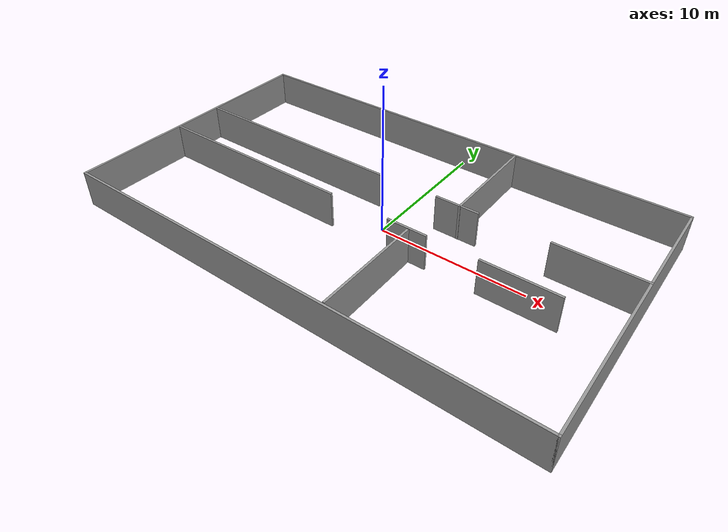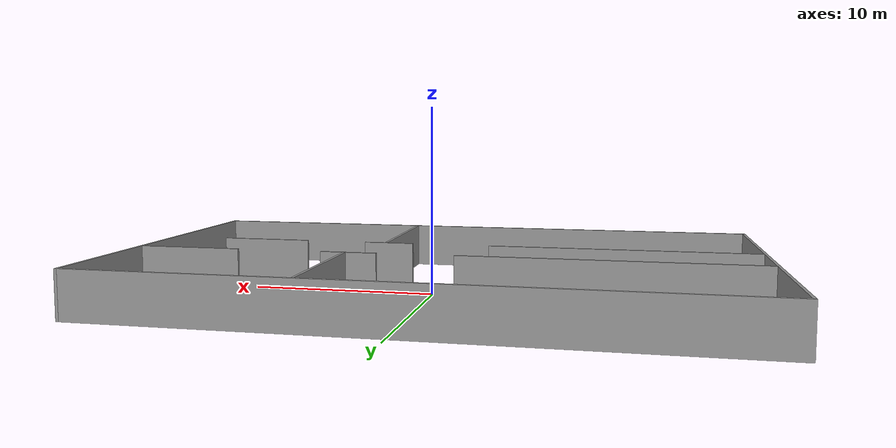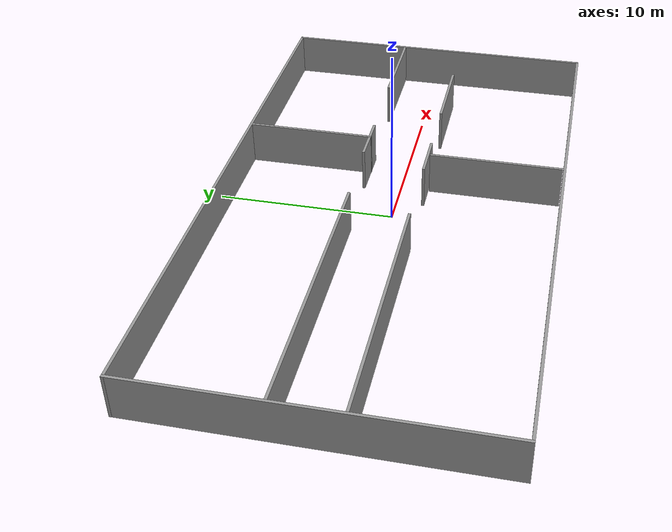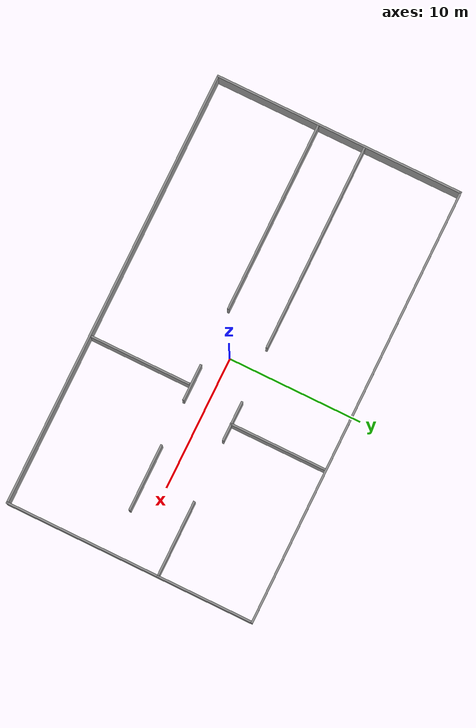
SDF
<?xml version='1.0'?>
<sdf version='1.6'>
  <model name='lima-mars'>
    <pose frame=''>-0.67212 0.070161 0 0 -0 0</pose>
    <link name='Wall_10'>
      <collision name='Wall_10_Collision'>
        <geometry>
          <box>
            <size>14.25 0.15 2.5</size>
          </box>
        </geometry>
        <pose frame=''>0 0 1.25 0 -0 0</pose>
      </collision>
      <visual name='Wall_10_Visual'>
        <pose frame=''>0 0 1.25 0 -0 0</pose>
        <geometry>
          <box>
            <size>14.25 0.15 2.5</size>
          </box>
        </geometry>
        <material>
          <script>
            <uri>file://media/materials/scripts/gazebo.material</uri>
            <name>Gazebo/Grey</name>
          </script>
          <ambient>1 1 1 1</ambient>
        </material>
      </visual>
      <pose frame=''>-9.26946 -1.57024 0 0 -0 0</pose>
    </link>
    <link name='Wall_12'>
      <collision name='Wall_12_Collision'>
        <geometry>
          <box>
            <size>2.75 0.15 2.5</size>
          </box>
        </geometry>
        <pose frame=''>0 0 1.25 0 -0 0</pose>
      </collision>
      <visual name='Wall_12_Visual'>
        <pose frame=''>0 0 1.25 0 -0 0</pose>
        <geometry>
          <box>
            <size>2.75 0.15 2.5</size>
          </box>
        </geometry>
        <material>
          <script>
            <uri>file://media/materials/scripts/gazebo.material</uri>
            <name>Gazebo/Grey</name>
          </script>
          <ambient>1 1 1 1</ambient>
        </material>
      </visual>
      <pose frame=''>3.48457 -1.57024 0 0 -0 0</pose>
    </link>
    <link name='Wall_14'>
      <collision name='Wall_14_Collision'>
        <geometry>
          <box>
            <size>7.5 0.15 2.5</size>
          </box>
        </geometry>
        <pose frame=''>0 0 1.25 0 -0 0</pose>
      </collision>
      <visual name='Wall_14_Visual'>
        <pose frame=''>0 0 1.25 0 -0 0</pose>
        <geometry>
          <box>
            <size>7.5 0.15 2.5</size>
          </box>
        </geometry>
        <material>
          <script>
            <uri>file://media/materials/scripts/gazebo.material</uri>
            <name>Gazebo/Grey</name>
          </script>
          <ambient>1 1 1 1</ambient>
        </material>
      </visual>
      <pose frame=''>3.65729 -5.43811 0 0 0 -1.5708</pose>
    </link>
    <link name='Wall_16'>
      <collision name='Wall_16_Collision'>
        <geometry>
          <box>
            <size>15.5 0.15 2.5</size>
          </box>
        </geometry>
        <pose frame=''>0 0 1.25 0 -0 0</pose>
      </collision>
      <visual name='Wall_16_Visual'>
        <pose frame=''>0 0 1.25 0 -0 0</pose>
        <geometry>
          <box>
            <size>15.5 0.15 2.5</size>
          </box>
        </geometry>
        <material>
          <script>
            <uri>file://media/materials/scripts/gazebo.material</uri>
            <name>Gazebo/Grey</name>
          </script>
          <ambient>1 1 1 1</ambient>
        </material>
      </visual>
      <pose frame=''>-8.64446 1.98282 0 0 -0 0</pose>
    </link>
    <link name='Wall_18'>
      <collision name='Wall_18_Collision'>
        <geometry>
          <box>
            <size>3 0.15 2.5</size>
          </box>
        </geometry>
        <pose frame=''>0 0 1.25 0 -0 0</pose>
      </collision>
      <visual name='Wall_18_Visual'>
        <pose frame=''>0 0 1.25 0 -0 0</pose>
        <geometry>
          <box>
            <size>3 0.15 2.5</size>
          </box>
        </geometry>
        <material>
          <script>
            <uri>file://media/materials/scripts/gazebo.material</uri>
            <name>Gazebo/Grey</name>
          </script>
          <ambient>1 1 1 1</ambient>
        </material>
      </visual>
      <pose frame=''>4.66493 2.08835 0 0 -0 0</pose>
    </link>
    <link name='Wall_21'>
      <collision name='Wall_21_Collision'>
        <geometry>
          <box>
            <size>7.25 0.15 2.5</size>
          </box>
        </geometry>
        <pose frame=''>0 0 1.25 0 -0 0</pose>
      </collision>
      <visual name='Wall_21_Visual'>
        <pose frame=''>0 0 1.25 0 -0 0</pose>
        <geometry>
          <box>
            <size>7.25 0.15 2.5</size>
          </box>
        </geometry>
        <material>
          <script>
            <uri>file://media/materials/scripts/gazebo.material</uri>
            <name>Gazebo/Grey</name>
          </script>
          <ambient>1 1 1 1</ambient>
        </material>
      </visual>
      <pose frame=''>4.8779 5.61925 0 0 -0 1.5708</pose>
    </link>
    <link name='Wall_23'>
      <collision name='Wall_23_Collision'>
        <geometry>
          <box>
            <size>5 0.15 2.5</size>
          </box>
        </geometry>
        <pose frame=''>0 0 1.25 0 -0 0</pose>
      </collision>
      <visual name='Wall_23_Visual'>
        <pose frame=''>0 0 1.25 0 -0 0</pose>
        <geometry>
          <box>
            <size>5 0.15 2.5</size>
          </box>
        </geometry>
        <material>
          <script>
            <uri>file://media/materials/scripts/gazebo.material</uri>
            <name>Gazebo/Grey</name>
          </script>
          <ambient>1 1 1 1</ambient>
        </material>
      </visual>
      <pose frame=''>10.7416 -1.57175 0 0 -0 0</pose>
    </link>
    <link name='Wall_25'>
      <collision name='Wall_25_Collision'>
        <geometry>
          <box>
            <size>5.75 0.15 2.5</size>
          </box>
        </geometry>
        <pose frame=''>0 0 1.25 0 -0 0</pose>
      </collision>
      <visual name='Wall_25_Visual'>
        <pose frame=''>0 0 1.25 0 -0 0</pose>
        <geometry>
          <box>
            <size>5.75 0.15 2.5</size>
          </box>
        </geometry>
        <material>
          <script>
            <uri>file://media/materials/scripts/gazebo.material</uri>
            <name>Gazebo/Grey</name>
          </script>
          <ambient>1 1 1 1</ambient>
        </material>
      </visual>
      <pose frame=''>13.6249 2.15016 0 0 -0 0</pose>
    </link>
    <link name='Wall_5'>
      <collision name='Wall_5_Collision'>
        <geometry>
          <box>
            <size>18.75 0.15 2.5</size>
          </box>
        </geometry>
        <pose frame=''>0 0 1.25 0 -0 0</pose>
      </collision>
      <visual name='Wall_5_Visual'>
        <pose frame=''>0 0 1.25 0 -0 0</pose>
        <geometry>
          <box>
            <size>18.75 0.15 2.5</size>
          </box>
        </geometry>
        <material>
          <script>
            <uri>file://media/materials/scripts/gazebo.material</uri>
            <name>Gazebo/Grey</name>
          </script>
          <ambient>1 1 1 1</ambient>
        </material>
      </visual>
      <pose frame=''>-16.425 0 0 0 0 -1.5708</pose>
    </link>
    <link name='Wall_6'>
      <collision name='Wall_6_Collision'>
        <geometry>
          <box>
            <size>33 0.15 2.5</size>
          </box>
        </geometry>
        <pose frame=''>0 0 1.25 0 -0 0</pose>
      </collision>
      <visual name='Wall_6_Visual'>
        <pose frame=''>0 0 1.25 0 -0 0</pose>
        <geometry>
          <box>
            <size>33 0.15 2.5</size>
          </box>
        </geometry>
        <material>
          <script>
            <uri>file://media/materials/scripts/gazebo.material</uri>
            <name>Gazebo/Grey</name>
          </script>
          <ambient>1 1 1 1</ambient>
        </material>
      </visual>
      <pose frame=''>0 -9.3 0 0 -0 0</pose>
    </link>
    <link name='Wall_7'>
      <collision name='Wall_7_Collision'>
        <geometry>
          <box>
            <size>18.75 0.15 2.5</size>
          </box>
        </geometry>
        <pose frame=''>0 0 1.25 0 -0 0</pose>
      </collision>
      <visual name='Wall_7_Visual'>
        <pose frame=''>0 0 1.25 0 -0 0</pose>
        <geometry>
          <box>
            <size>18.75 0.15 2.5</size>
          </box>
        </geometry>
        <material>
          <script>
            <uri>file://media/materials/scripts/gazebo.material</uri>
            <name>Gazebo/Grey</name>
          </script>
          <ambient>1 1 1 1</ambient>
        </material>
      </visual>
      <pose frame=''>16.425 0 0 0 -0 1.5708</pose>
    </link>
    <link name='Wall_8'>
      <collision name='Wall_8_Collision'>
        <geometry>
          <box>
            <size>33 0.15 2.5</size>
          </box>
        </geometry>
        <pose frame=''>0 0 1.25 0 -0 0</pose>
      </collision>
      <visual name='Wall_8_Visual'>
        <pose frame=''>0 0 1.25 0 -0 0</pose>
        <geometry>
          <box>
            <size>33 0.15 2.5</size>
          </box>
        </geometry>
        <material>
          <script>
            <uri>file://media/materials/scripts/gazebo.material</uri>
            <name>Gazebo/Grey</name>
          </script>
          <ambient>1 1 1 1</ambient>
        </material>
      </visual>
      <pose frame=''>0 9.3 0 0 -0 3.14159</pose>
    </link>
    <static>1</static>
  </model>
</sdf>
